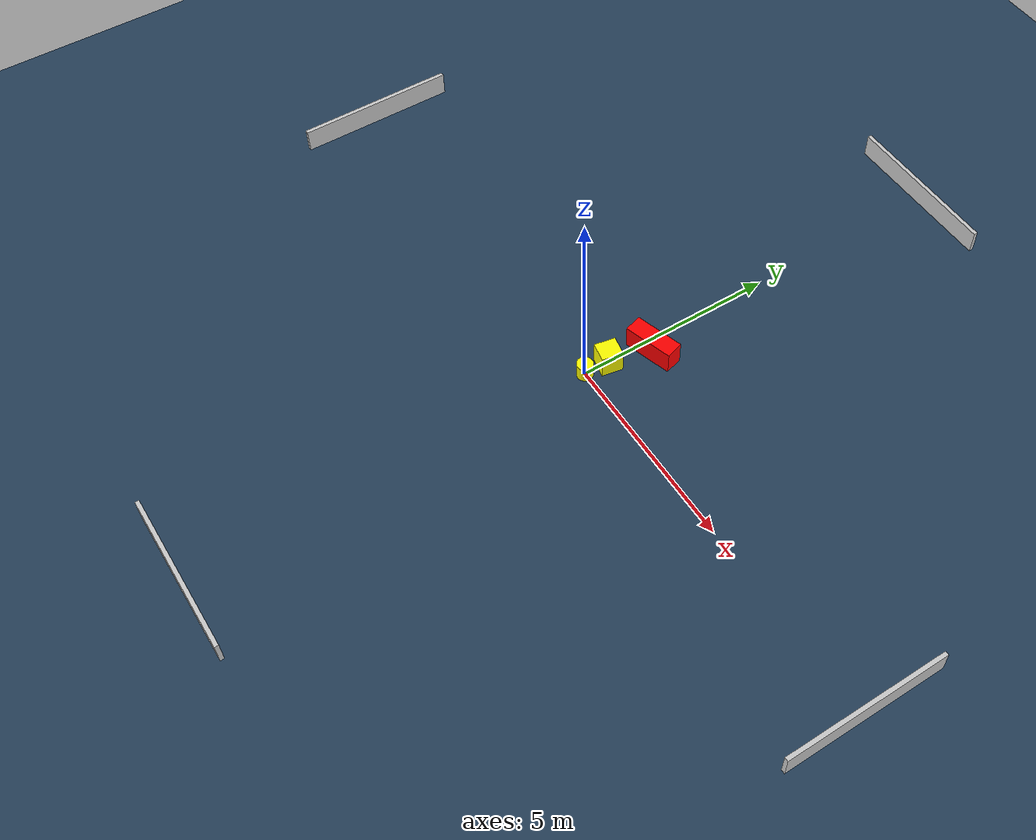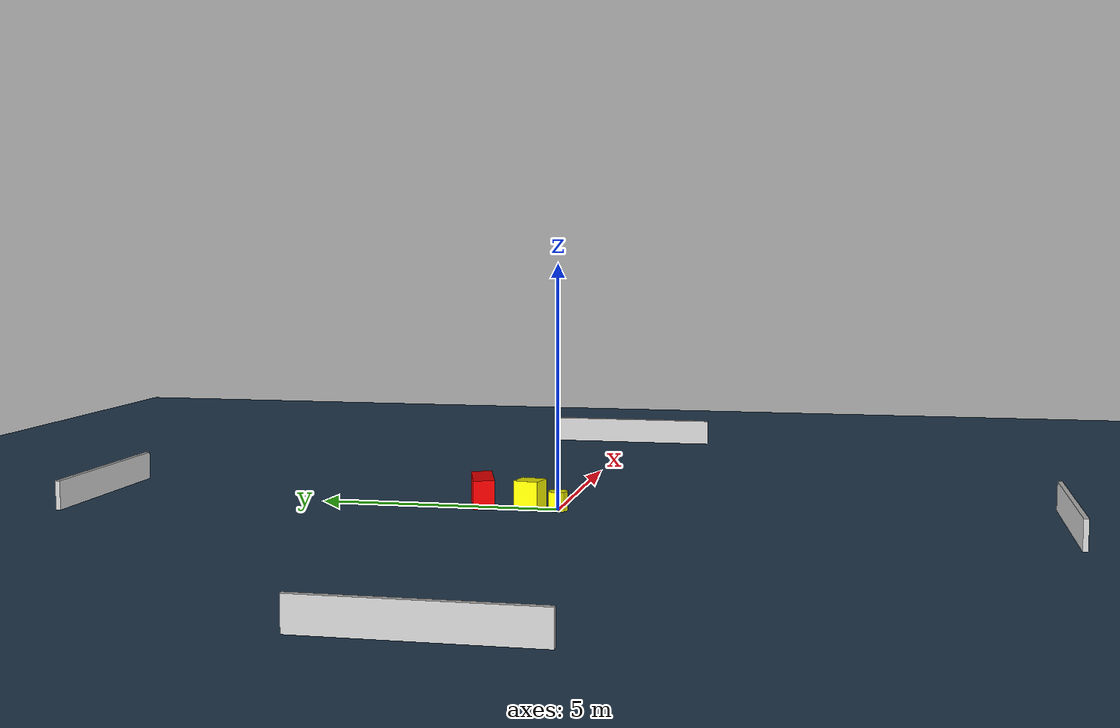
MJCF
<?xml version="1.0" ?>
<mujoco model="generated_environment">
  <option timestep="0.01" integrator="RK4" cone="elliptic"/>
  <default>
    <geom density="1"/>
  </default>
  <asset>
    <texture builtin="gradient" height="3072" name="skybox" rgb1="0.3 0.5 0.7" rgb2="0 0 0" type="skybox" width="512"/>
    <texture builtin="checker" height="300" name="groundplane" rgb1="0.2 0.3 0.4" rgb2="0.1 0.2 0.3" type="2d" width="300"/>
    <material name="groundplane" reflectance="0.2" texrepeat="5 5" texture="groundplane"/>
  </asset>
  <worldbody>
    <light dir="0 0 -1" directional="true" pos="0 0 1.5"/>
    <geom condim="3" friction="0.5 0.005 0.001" material="groundplane" name="floor" pos="0 0 0" size="0 0 0.05" type="plane"/>
    <body name="walls">
      <geom name="wall_1" condim="4" pos="-10.0 0.0 0.3" rgba="0.800000011920929 0.800000011920929 0.800000011920929 1.0" size="0.05 2.0 0.3" type="box"/>
      <geom name="wall_2" condim="4" pos="10.0 0.0 0.3" rgba="0.800000011920929 0.800000011920929 0.800000011920929 1.0" size="0.05 2.0 0.3" type="box"/>
      <geom name="wall_3" condim="4" pos="0.0 -10.0 0.3" rgba="0.800000011920929 0.800000011920929 0.800000011920929 1.0" size="2.0 0.05 0.3" type="box"/>
      <geom name="wall_4" condim="4" pos="0.0 10.0 0.3" rgba="0.800000011920929 0.800000011920929 0.800000011920929 1.0" size="2.0 0.05 0.3" type="box"/>
    </body>
    <body name="robot">
      <joint name="joint_x" type="slide" pos="0 0 0" axis="1 0 0"/>
      <joint name="joint_y" type="slide" pos="0 0 0" axis="0 1 0"/>
      <geom name="robot" type="cylinder" pos="0.0 0.0 0.2" size="0.2 0.2 0.0" mass="5.0" friction="1.0 0.005 0.0001" condim="4" rgba="1.0 1.0 0.0 1.0"/>
    </body>
    <body name="obstacle_1_movable">
      <geom name="obstacle_1_movable" condim="4" pos="0.07015202377680137 0.5988259505310481 0.3" euler="0 0 78.63970010687511" friction="0.0 0.005 0.001" rgba="1.0 1.0 0.0 1.0" size="0.2608962970679209 0.2427170917735835 0.3" type="box" mass="0.1"/>
      <joint type="free"/>
    </body>
    <body name="obstacle_2_static">
      <geom name="obstacle_2_static" condim="4" pos="0.33127008319033235 1.6642719537873685 0.3" euler="0 0 286.7091103671715" friction="0.0 0.005 0.001" rgba="1.0 0.0 0.0 1.0" size="0.2202206407888473 0.6162500012312722 0.3" type="box"/>
    </body>
  </worldbody>
  <actuator>
    <motor name="actuator_x" joint="joint_x" gear="1" ctrlrange="-1 1"/>
    <motor name="actuator_y" joint="joint_y" gear="1" ctrlrange="-1 1"/>
  </actuator>
</mujoco>
